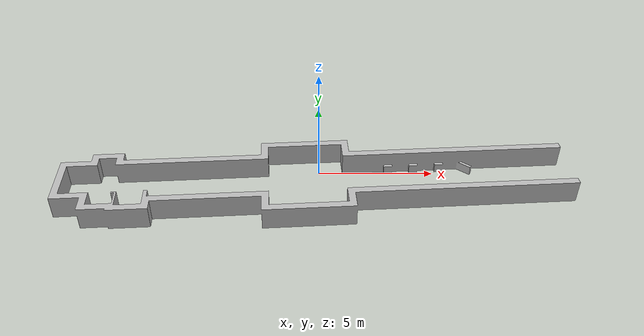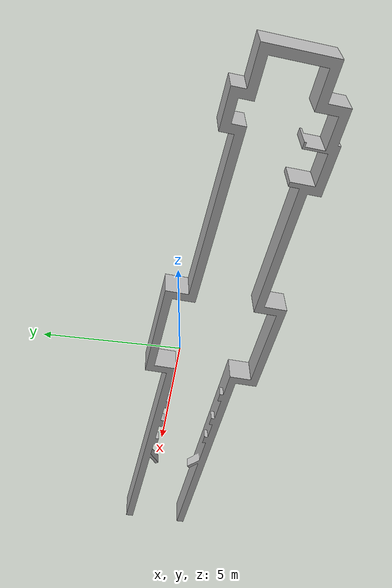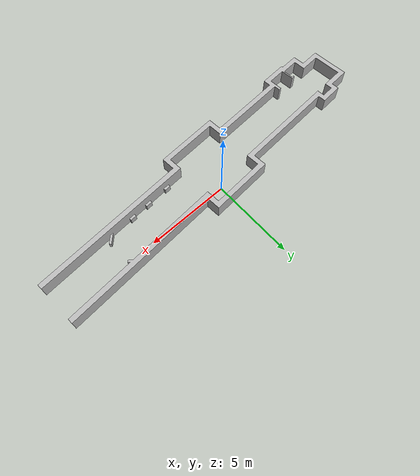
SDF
<?xml version='1.0'?>
<sdf version="1.4">
<model name="inspire_corridor">
  <pose>0 0 0.5 0 0 0</pose>
  <static>true</static>
    <link name="link">
      <collision name="collision">
        <geometry>
          <mesh><uri>file://models/inspire_corridor/map_inspire_corridor_20181101.stl</uri></mesh>
        </geometry>
      </collision>
      <visual name="visual">
        <geometry>
          <mesh><uri>file://models/inspire_corridor/map_inspire_corridor_20181101.stl</uri></mesh>
        </geometry>
      </visual>
    </link>
  </model>
</sdf>
